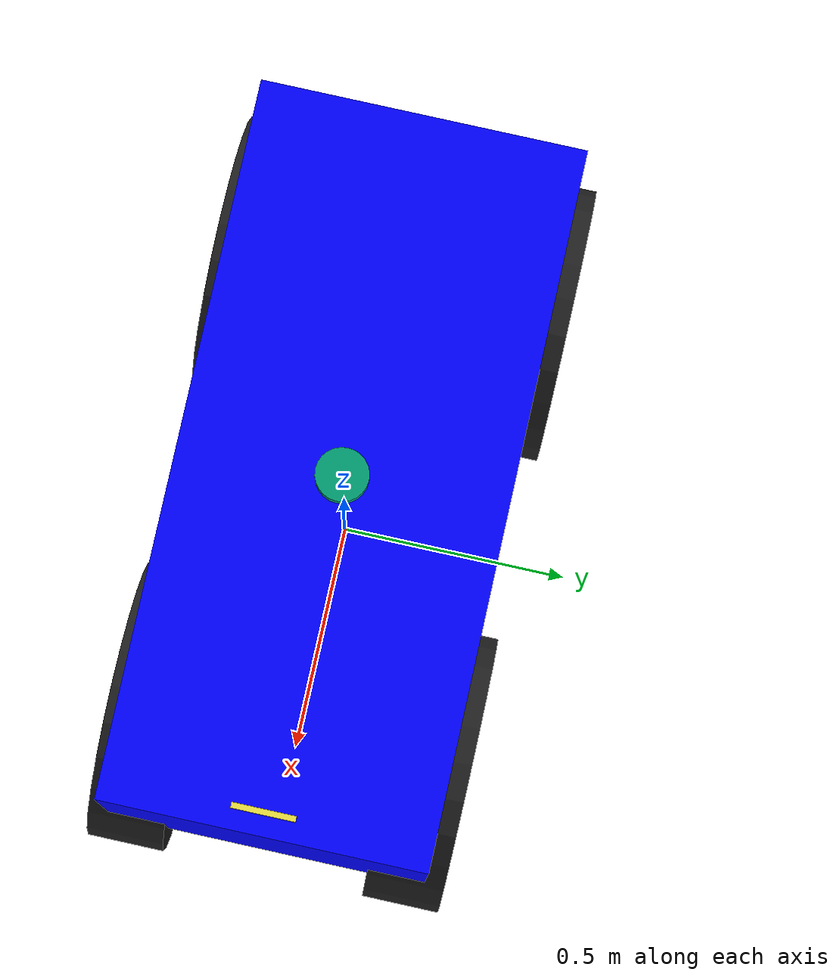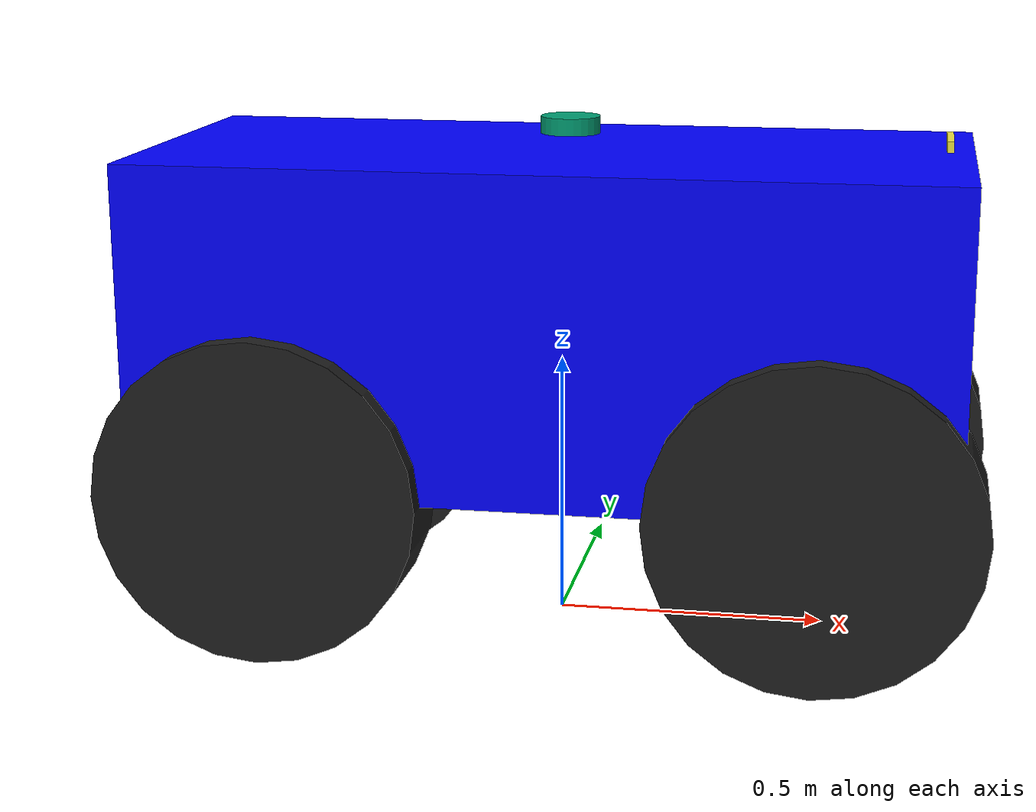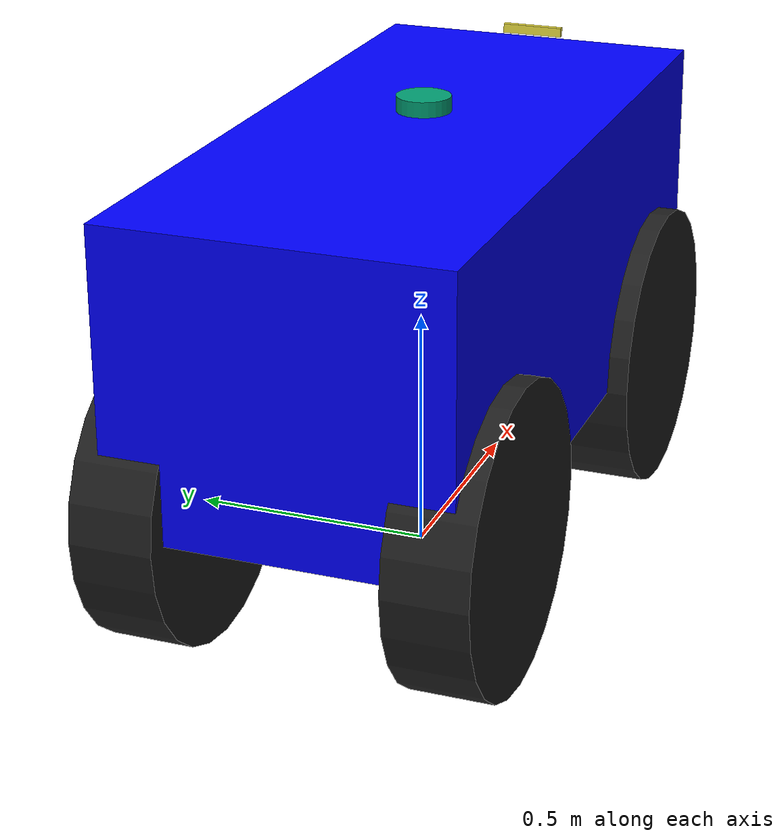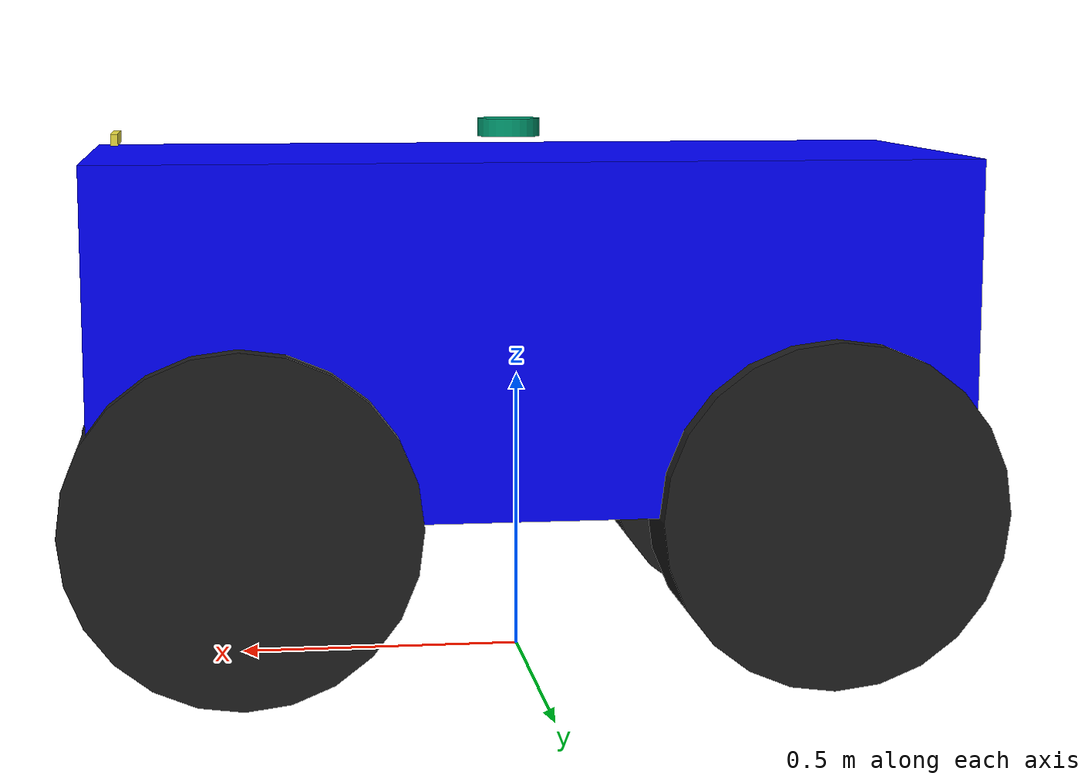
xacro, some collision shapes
<?xml version="1.0" ?>
<robot name="smart_define" xmlns:xacro="http://ros.org/wiki/xacro">
 <xacro:property name="PI" value="3.1415926835897931"/>
 <xacro:include filename="$(find turtlebot3_description)/urdf/common_properties.xacro"/>
 <xacro:include filename="$(find turtlebot3_description)/urdf/smart.gazebo.xacro"/>

  <!-- base -->
  <xacro:property name="base_length" value="1.5"/>
  <xacro:property name="base_width" value="0.68"/>
  <xacro:property name="base_height" value="0.6"/>
  <xacro:property name="base_collision_height" value="-0.3"/>
  <xacro:property name="base_mass" value="956"/>
  <xacro:property name="base_mass_ixx" value="343"/>
  <xacro:property name="base_mass_iyy" value="728"/>
  <xacro:property name="base_mass_izz" value="772"/>

  <!-- rear tyre -->
  <xacro:property name="rear_tyre_x" value="-0.5"/>
  <xacro:property name="rear_tyre_y" value="0.642"/>
  <xacro:property name="rear_tyre_r" value="0.3"/>
  <xacro:property name="rear_tyre_length" value="0.165"/>
  <xacro:property name="rear_tyre_mass" value="20"/>
  <xacro:property name="rear_tyre_mass_ixx" value="0.5"/>
  <xacro:property name="rear_tyre_mass_iyy" value="0.9"/>
  <xacro:property name="rear_tyre_mass_izz" value="0.5"/>

  <!-- front tyre -->
  <xacro:property name="front_tyre_x" value="0.5"/>
  <xacro:property name="front_tyre_y" value="0.3"/>
  <xacro:property name="front_tyre_r" value="0.3"/>

  <xacro:property name="front_tyre_right_y" value="-0.3"/>
  <xacro:property name="front_tyre_z" value="-0.6"/>
  <xacro:property name="front_tyre_length" value="0.165"/>
  <xacro:property name="front_tyre_mass" value="20"/>
  <xacro:property name="front_tyre_mass_ixx" value="0.5"/>
  <xacro:property name="front_tyre_mass_iyy" value="0.9"/>
  <xacro:property name="front_tyre_mass_izz" value="0.5"/>

  <!-- steering -->
  <xacro:property name="str_angle" value="0.6"/>
  <xacro:property name="str_length" value="0.01"/>
  <xacro:property name="str_radius" value="0.1"/>
  <xacro:property name="str_mass" value="5"/>
  <xacro:property name="str_mass_ixx" value="0.012"/>
  <xacro:property name="str_mass_iyy" value="0.025"/>
  <xacro:property name="str_mass_izz" value="0.012"/>

  <link name="base_footprint"/>
  <!--Car Body-->
  <link name="base_link">
    <collision>
      <origin xyz="0 0 ${base_collision_height}" rpy="0 0 0"/>
      <geometry>
        <box size="${base_length} ${base_width} ${base_height}"/>
      </geometry>
    </collision>

    <visual>
      <origin xyz="0 0 ${base_collision_height}" rpy="0 0 0"/>
      <geometry>
        <box size="${base_length} ${base_width} ${base_height}"/>
      </geometry>
      <material name="Cyan">
        <color rgba="0 0.0 1.0 1.0"/>
      </material>
    </visual>
  </link>
  <joint name="base_footprint_base_link" type="fixed">
    <parent link="base_footprint"/>
    <child link="base_link"/>
    <origin xyz="0 0 0.9" rpy="0 0 0"/>
  </joint>

  <!-- front left wheel steering -->
  <joint name="front_left_steering_joint" type="revolute">
    <parent link="base_link"/>
    <child link="front_left_steering_link"/>
    <origin xyz="${front_tyre_x} ${front_tyre_y} ${front_tyre_z}" rpy="0 0 0"/>
    <axis xyz="0 0 1"/>
    <limit lower="${-str_angle}" upper="${str_angle}" effort="1000000.0" velocity="10000.0"/>
    <dynamics damping="10.0" friction="0.0"/>
  </joint>

  <link name="front_left_steering_link">
    <visual>
      <origin xyz="0 0 0" rpy="${PI/2} 0 0"/>
      <geometry>
        <cylinder length="${str_length}" radius="${str_radius}"/>
      </geometry>
            <material name="Cyan">
        <color rgba="0 1.0 0.0 1.0"/>
      </material>
    </visual>
    <inertial>
      <origin xyz="0 0 0" rpy="0 0 0"/>
      <mass value="${str_mass}"/>
      <inertia
      ixx="${str_mass_ixx}"  ixy="0.000000"  ixz="0.000000"
      iyy="${str_mass_iyy}"  iyz="0.000000"
      izz="${str_mass_izz}"/>
    </inertial>
  </link>
<!-- front left wheel -->
  <joint name="front_left_wheel_joint" type="continuous">
    <parent link="front_left_steering_link"/>
    <child link="front_left_wheel_link"/>
    <origin xyz="0 0 0" rpy="0 0 0"/>
    <axis xyz="0 1 0"/>
    <dynamics damping="0.1"/>
    <limit effort="1000000" velocity="10000" />
    <joint_properties damping="0.0" friction="0.0" />
  </joint>

  <link name="front_left_wheel_link">
    <collision>
      <origin xyz="0 0 0" rpy="${PI/2} 0 0"/>
      <geometry>
        <cylinder length="${front_tyre_length}" radius="${front_tyre_r}"/>
      </geometry>
    </collision>
    <visual>
      <origin xyz="0 0 0" rpy="${PI/2} 0 0 "/>
      <geometry>
        <cylinder length="${front_tyre_length}" radius="${front_tyre_r}"/>
      </geometry>
    </visual>
    <inertial>
      <origin xyz="0 0 0" rpy="0 0 0"/>
      <mass value="${front_tyre_mass}"/>
      <inertia
        ixx="${front_tyre_mass_ixx}"  ixy="0.000000"  ixz="0.000000"
        iyy="${front_tyre_mass_iyy}"  iyz="0.000000"
        izz="${front_tyre_mass_izz}"/>
    </inertial>
  </link>

  <!-- front right wheel steering -->
  <joint name="front_right_steering_joint" type="revolute">
    <parent link="base_link"/>
    <child link="front_right_steering_link"/>
    <origin xyz="${front_tyre_x} ${front_tyre_right_y} ${front_tyre_z}" rpy="0 0 0"/>
    <axis xyz="0 0 1"/>
    <limit lower="${-str_angle}" upper="${str_angle}" effort="1000000.0" velocity="10000.0"/>
    <dynamics damping="10.0" friction="0.0"/>
  </joint>

  <link name="front_right_steering_link">
    <visual>
      <origin xyz="0 0 0" rpy="${PI/2} 0 0"/>
      <geometry>
        <cylinder length="${str_length}" radius="${str_radius}"/>
      </geometry>
            <material name="Cyan">
        <color rgba="0 1.0 0.0 1.0"/>
      </material>
    </visual>
    <inertial>
      <origin xyz="0 0 0" rpy="0 0 0"/>
      <mass value="${str_mass}"/>
      <inertia
      ixx="${str_mass_ixx}"  ixy="0.000000"  ixz="0.000000"
      iyy="${str_mass_iyy}"  iyz="0.000000"
      izz="${str_mass_izz}"/>
    </inertial>
  </link>
<!-- front right wheel -->
  <joint name="front_right_wheel_joint" type="continuous">
    <parent link="front_right_steering_link"/>
    <child link="front_right_wheel_link"/>
    <origin xyz="0 0 0" rpy="0 0 0"/>
    <axis xyz="0 1 0"/>
    <dynamics damping="0.1"/>
    <limit effort="1000000" velocity="10000" />
    <joint_properties damping="0.0" friction="0.0" />
  </joint>

  <link name="front_right_wheel_link">
    <collision>
      <origin xyz="0 0 0" rpy="${PI/2} 0 0"/>
      <geometry>
        <cylinder length="${front_tyre_length}" radius="${front_tyre_r}"/>
      </geometry>
    </collision>
    <visual>
      <origin xyz="0 0 0" rpy="${PI/2} 0 0 "/>
      <geometry>
        <cylinder length="${front_tyre_length}" radius="${front_tyre_r}"/>
      </geometry>
    </visual>
    <inertial>
      <origin xyz="0 0 0" rpy="0 0 0"/>
      <mass value="${front_tyre_mass}"/>
      <inertia
        ixx="${front_tyre_mass_ixx}"  ixy="0.000000"  ixz="0.000000"
        iyy="${front_tyre_mass_iyy}"  iyz="0.000000"
        izz="${front_tyre_mass_izz}"/>
    </inertial>
  </link>

    <!-- rear left wheel steering -->
  <joint name="rear_left_steering_joint" type="revolute">
    <parent link="base_link"/>
    <child link="rear_left_steering_link"/>
    <origin xyz="${rear_tyre_x} ${front_tyre_y} ${front_tyre_z}" rpy="0 0 0"/>
    <axis xyz="0 0 1"/>
    <limit lower="${-str_angle}" upper="${str_angle}" effort="1000000.0" velocity="10000.0"/>
    <dynamics damping="10.0" friction="0.0"/>
  </joint>

  <link name="rear_left_steering_link">
    <visual>
      <origin xyz="0 0 0" rpy="${PI/2} 0 0"/>
      <geometry>
        <cylinder length="${str_length}" radius="${str_radius}"/>
      </geometry>
            <material name="Cyan">
        <color rgba="0 1.0 0.0 1.0"/>
      </material>
    </visual>
    <inertial>
      <origin xyz="0 0 0" rpy="0 0 0"/>
      <mass value="${str_mass}"/>
      <inertia
      ixx="${str_mass_ixx}"  ixy="0.000000"  ixz="0.000000"
      iyy="${str_mass_iyy}"  iyz="0.000000"
      izz="${str_mass_izz}"/>
    </inertial>
  </link>
   <!-- rear left wheel -->
  <joint name="rear_left_wheel_joint" type="continuous">
    <parent link="rear_left_steering_link"/>
    <child link="rear_left_wheel_link"/>
    <origin xyz="0 0 0" rpy="0 0 0"/>
    <axis xyz="0 1 0"/>
    <dynamics damping="0.1"/>
    <limit effort="1000000" velocity="10000" />
    <joint_properties damping="0.0" friction="0.0" />
  </joint>

  <link name="rear_left_wheel_link">
    <collision>
      <origin xyz="0 0 0" rpy="${PI/2} 0 0"/>
      <geometry>
        <cylinder length="${front_tyre_length}" radius="${front_tyre_r}"/>
      </geometry>
    </collision>
    <visual>
      <origin xyz="0 0 0" rpy="${PI/2} 0 0 "/>
      <geometry>
        <cylinder length="${front_tyre_length}" radius="${front_tyre_r}"/>
      </geometry>
    </visual>
    <inertial>
      <origin xyz="0 0 0" rpy="0 0 0"/>
      <mass value="${front_tyre_mass}"/>
      <inertia
        ixx="${front_tyre_mass_ixx}"  ixy="0.000000"  ixz="0.000000"
        iyy="${front_tyre_mass_iyy}"  iyz="0.000000"
        izz="${front_tyre_mass_izz}"/>
    </inertial>
  </link>

    <!-- rear right wheel steering -->
  <joint name="rear_right_steering_joint" type="revolute">
    <parent link="base_link"/>
    <child link="rear_right_steering_link"/>
    <origin xyz="${rear_tyre_x} ${front_tyre_right_y} ${front_tyre_z}" rpy="0 0 0"/>
    <axis xyz="0 0 1"/>
    <limit lower="${-str_angle}" upper="${str_angle}" effort="1000000.0" velocity="10000.0"/>
    <dynamics damping="10.0" friction="0.0"/>
  </joint>

  <link name="rear_right_steering_link">
    <visual>
      <origin xyz="0 0 0" rpy="${PI/2} 0 0"/>
      <geometry>
        <cylinder length="${str_length}" radius="${str_radius}"/>
      </geometry>
            <material name="Cyan">
        <color rgba="0 1.0 0.0 1.0"/>
      </material>
    </visual>
    <inertial>
      <origin xyz="0 0 0" rpy="0 0 0"/>
      <mass value="${str_mass}"/>
      <inertia
      ixx="${str_mass_ixx}"  ixy="0.000000"  ixz="0.000000"
      iyy="${str_mass_iyy}"  iyz="0.000000"
      izz="${str_mass_izz}"/>
    </inertial>
  </link>
   <!-- rear right wheel -->
   <joint name="rear_right_wheel_joint" type="continuous">
    <parent link="rear_right_steering_link"/>
    <child link="rear_right_wheel_link"/>
    <origin xyz="0 0 0" rpy="0 0 0"/>
    <axis xyz="0 1 0"/>
    <dynamics damping="0.1"/>
    <limit effort="1000000" velocity="10000" />
    <joint_properties damping="0.0" friction="0.0" />
  </joint>

  <link name="rear_right_wheel_link">
    <collision>
      <origin xyz="0 0 0" rpy="${PI/2} 0 0"/>
      <geometry>
        <cylinder length="${front_tyre_length}" radius="${front_tyre_r}"/>
      </geometry>
    </collision>
    <visual>
      <origin xyz="0 0 0" rpy="${PI/2} 0 0 "/>
      <geometry>
        <cylinder length="${front_tyre_length}" radius="${front_tyre_r}"/>
      </geometry>
    </visual>
    <inertial>
      <origin xyz="0 0 0" rpy="0 0 0"/>
      <mass value="${front_tyre_mass}"/>
      <inertia
        ixx="${front_tyre_mass_ixx}"  ixy="0.000000"  ixz="0.000000"
        iyy="${front_tyre_mass_iyy}"  iyz="0.000000"
        izz="${front_tyre_mass_izz}"/>
    </inertial>
  </link>

  <!-- laser  -->
  <joint name="scan_joint" type="fixed">
    <parent link="base_link"/>
    <child link="base_scan"/>
    <origin xyz="0.0 0.0 0.05" rpy="0 0 0"/>
  </joint>

  <link name="base_scan">
    <visual>
      <origin xyz="0 0 0" rpy="0 0 0"/>
      <geometry>
        <mesh filename="package://turtlebot3_description/meshes/sensors/lds.stl" scale="0.001 0.001 0.001"/>
      </geometry>
      <material name="dark"/>
    </visual>

    <collision>
      <origin xyz="0.015 0 -0.0065" rpy="0 0 0"/>
      <geometry>
        <cylinder length="0.0315" radius="0.055"/>
      </geometry>
    </collision>

    <inertial>
      <mass value="0.114" />
      <origin xyz="0 0 0" />
      <inertia ixx="0.001" ixy="0.0" ixz="0.0"
               iyy="0.001" iyz="0.0"
               izz="0.001" />
    </inertial>
  </link>
  <!--camera  -->
  <joint name="camera_joint" type="fixed">
    <origin xyz="0.7 -0.07 0.02" rpy="0 0 0"/>
    <parent link="base_link"/>
    <child link="camera_link"/>
  </joint>

  <link name="camera_link">
    <visual>
     <origin xyz="0 0 0" rpy="1.57 0 1.57"/>
      <geometry>
       <mesh filename="package://turtlebot3_description/meshes/sensors/r200.dae" />
      </geometry>
    </visual>
    <collision>
      <origin xyz="0.003 0.065 0.007" rpy="0 0 0"/>
      <geometry>
        <box size="0.012 0.132 0.020"/>
      </geometry>
    </collision>
  </link>

</robot>
